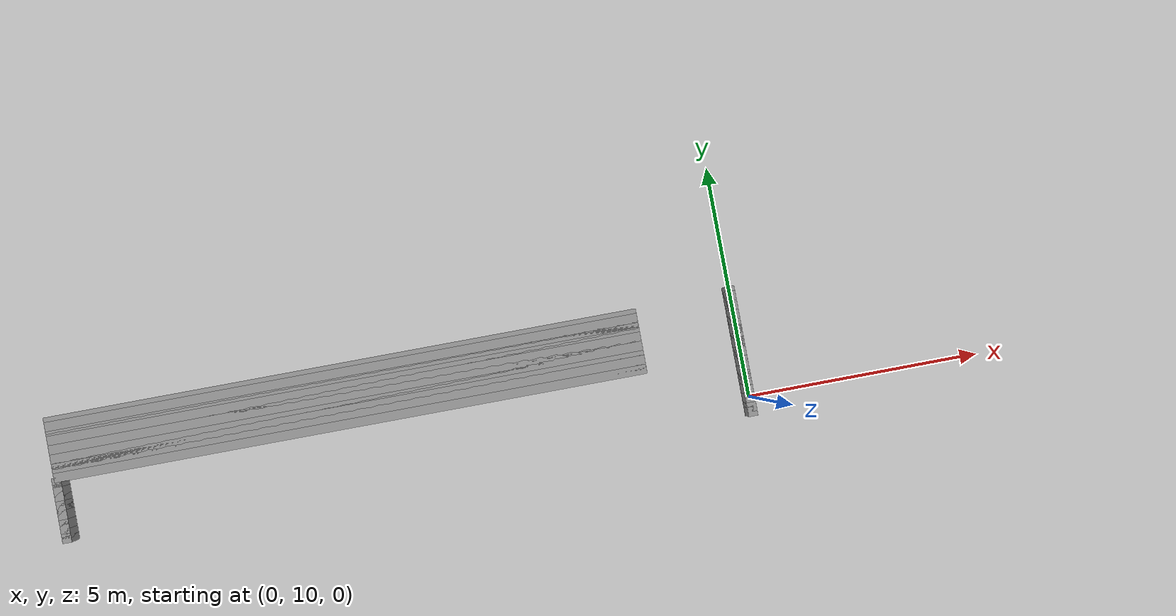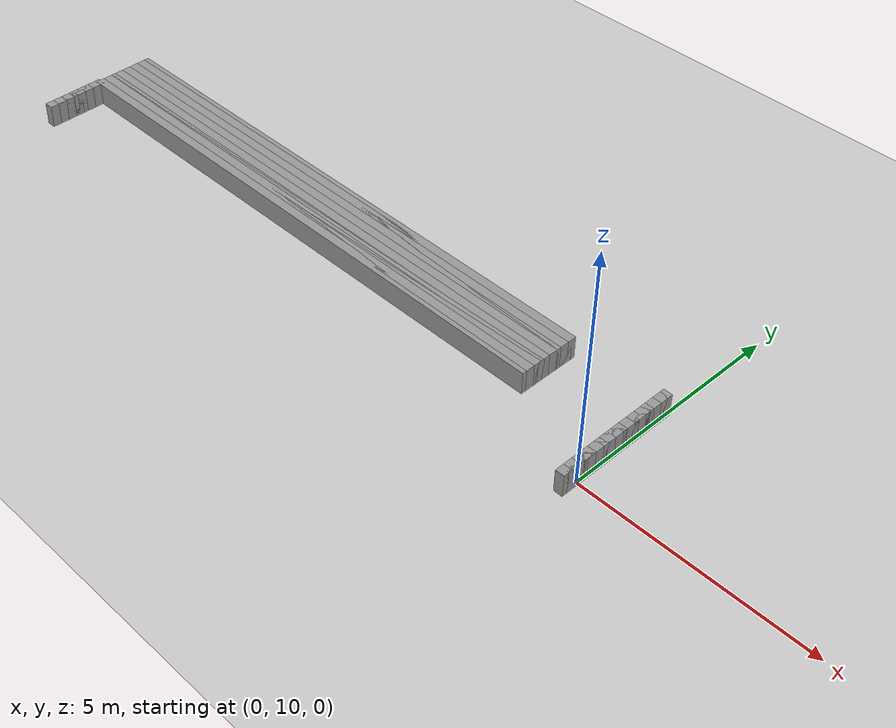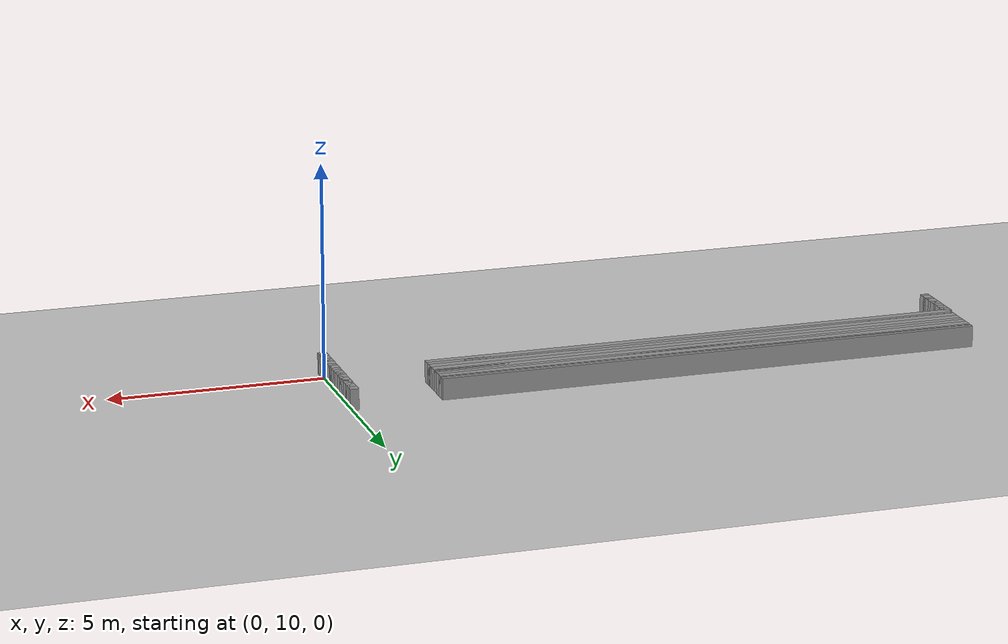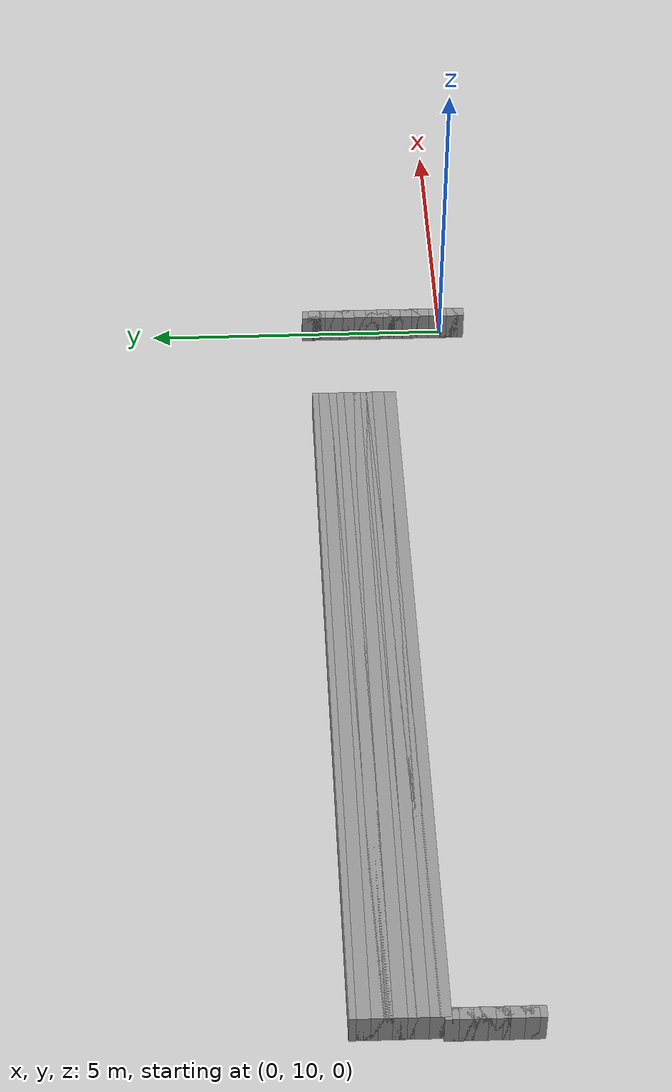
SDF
<sdf version="1.6">
 <world name="GridMap">
  <include><uri>model://sun</uri></include>
  <include><uri>model://ground_plane</uri></include>
  <model name="GridMap">
   <link name="Wall_(0.5,97.0)">
    <collision name="Wall_(0.5,97.0)_Collision">
     <geometry><box><size>0.2 0.2 0.5</size></box></geometry>
     <pose>-0.05 9.700000000000001 0.25 0 -0 0</pose>
    </collision>
    <inertial>
     <mass>0.5</mass>
     <pose>0 0.01 0 0 0 0</pose>
     <inertia><ixx>0.004</ixx><ixy>0.001</ixy><ixz>0</ixz><iyy>0.006</iyy><iyz>0</iyz><izz>0.007</izz></inertia>
    </inertial>
    <visual name="Wall_(0.5,97.0)_Visual">
     <geometry><box><size>0.2 0.2 0.5</size></box></geometry>
     <pose>-0.05 9.700000000000001 0.25 0 -0 0</pose>
     <material>
      <script><uri>file://media/materials/scripts/gazebo.material</uri><name>Gazebo/Grey</name></script>
      <ambient>1 1 1 1</ambient>
     </material>
     <meta><layer>0</layer></meta>
    </visual>
   </link>
   <link name="Wall_(148.5,97.0)">
    <collision name="Wall_(148.5,97.0)_Collision">
     <geometry><box><size>0.2 0.2 0.5</size></box></geometry>
     <pose>-14.850000000000001 9.700000000000001 0.25 0 -0 0</pose>
    </collision>
    <inertial>
     <mass>0.5</mass>
     <pose>0 0.01 0 0 0 0</pose>
     <inertia><ixx>0.004</ixx><ixy>0.001</ixy><ixz>0</ixz><iyy>0.006</iyy><iyz>0</iyz><izz>0.007</izz></inertia>
    </inertial>
    <visual name="Wall_(148.5,97.0)_Visual">
     <geometry><box><size>0.2 0.2 0.5</size></box></geometry>
     <pose>-14.850000000000001 9.700000000000001 0.25 0 -0 0</pose>
     <material>
      <script><uri>file://media/materials/scripts/gazebo.material</uri><name>Gazebo/Grey</name></script>
      <ambient>1 1 1 1</ambient>
     </material>
     <meta><layer>0</layer></meta>
    </visual>
   </link>
   <link name="Wall_(0.5,98.0)">
    <collision name="Wall_(0.5,98.0)_Collision">
     <geometry><box><size>0.2 0.2 0.5</size></box></geometry>
     <pose>-0.05 9.8 0.25 0 -0 0</pose>
    </collision>
    <inertial>
     <mass>0.5</mass>
     <pose>0 0.01 0 0 0 0</pose>
     <inertia><ixx>0.004</ixx><ixy>0.001</ixy><ixz>0</ixz><iyy>0.006</iyy><iyz>0</iyz><izz>0.007</izz></inertia>
    </inertial>
    <visual name="Wall_(0.5,98.0)_Visual">
     <geometry><box><size>0.2 0.2 0.5</size></box></geometry>
     <pose>-0.05 9.8 0.25 0 -0 0</pose>
     <material>
      <script><uri>file://media/materials/scripts/gazebo.material</uri><name>Gazebo/Grey</name></script>
      <ambient>1 1 1 1</ambient>
     </material>
     <meta><layer>0</layer></meta>
    </visual>
   </link>
   <link name="Wall_(148.5,98.0)">
    <collision name="Wall_(148.5,98.0)_Collision">
     <geometry><box><size>0.2 0.2 0.5</size></box></geometry>
     <pose>-14.850000000000001 9.8 0.25 0 -0 0</pose>
    </collision>
    <inertial>
     <mass>0.5</mass>
     <pose>0 0.01 0 0 0 0</pose>
     <inertia><ixx>0.004</ixx><ixy>0.001</ixy><ixz>0</ixz><iyy>0.006</iyy><iyz>0</iyz><izz>0.007</izz></inertia>
    </inertial>
    <visual name="Wall_(148.5,98.0)_Visual">
     <geometry><box><size>0.2 0.2 0.5</size></box></geometry>
     <pose>-14.850000000000001 9.8 0.25 0 -0 0</pose>
     <material>
      <script><uri>file://media/materials/scripts/gazebo.material</uri><name>Gazebo/Grey</name></script>
      <ambient>1 1 1 1</ambient>
     </material>
     <meta><layer>0</layer></meta>
    </visual>
   </link>
   <link name="Wall_(0.5,99.0)">
    <collision name="Wall_(0.5,99.0)_Collision">
     <geometry><box><size>0.2 0.2 0.5</size></box></geometry>
     <pose>-0.05 9.9 0.25 0 -0 0</pose>
    </collision>
    <inertial>
     <mass>0.5</mass>
     <pose>0 0.01 0 0 0 0</pose>
     <inertia><ixx>0.004</ixx><ixy>0.001</ixy><ixz>0</ixz><iyy>0.006</iyy><iyz>0</iyz><izz>0.007</izz></inertia>
    </inertial>
    <visual name="Wall_(0.5,99.0)_Visual">
     <geometry><box><size>0.2 0.2 0.5</size></box></geometry>
     <pose>-0.05 9.9 0.25 0 -0 0</pose>
     <material>
      <script><uri>file://media/materials/scripts/gazebo.material</uri><name>Gazebo/Grey</name></script>
      <ambient>1 1 1 1</ambient>
     </material>
     <meta><layer>0</layer></meta>
    </visual>
   </link>
   <link name="Wall_(148.5,99.0)">
    <collision name="Wall_(148.5,99.0)_Collision">
     <geometry><box><size>0.2 0.2 0.5</size></box></geometry>
     <pose>-14.850000000000001 9.9 0.25 0 -0 0</pose>
    </collision>
    <inertial>
     <mass>0.5</mass>
     <pose>0 0.01 0 0 0 0</pose>
     <inertia><ixx>0.004</ixx><ixy>0.001</ixy><ixz>0</ixz><iyy>0.006</iyy><iyz>0</iyz><izz>0.007</izz></inertia>
    </inertial>
    <visual name="Wall_(148.5,99.0)_Visual">
     <geometry><box><size>0.2 0.2 0.5</size></box></geometry>
     <pose>-14.850000000000001 9.9 0.25 0 -0 0</pose>
     <material>
      <script><uri>file://media/materials/scripts/gazebo.material</uri><name>Gazebo/Grey</name></script>
      <ambient>1 1 1 1</ambient>
     </material>
     <meta><layer>0</layer></meta>
    </visual>
   </link>
   <link name="Wall_(0.5,100.0)">
    <collision name="Wall_(0.5,100.0)_Collision">
     <geometry><box><size>0.2 0.2 0.5</size></box></geometry>
     <pose>-0.05 10.0 0.25 0 -0 0</pose>
    </collision>
    <inertial>
     <mass>0.5</mass>
     <pose>0 0.01 0 0 0 0</pose>
     <inertia><ixx>0.004</ixx><ixy>0.001</ixy><ixz>0</ixz><iyy>0.006</iyy><iyz>0</iyz><izz>0.007</izz></inertia>
    </inertial>
    <visual name="Wall_(0.5,100.0)_Visual">
     <geometry><box><size>0.2 0.2 0.5</size></box></geometry>
     <pose>-0.05 10.0 0.25 0 -0 0</pose>
     <material>
      <script><uri>file://media/materials/scripts/gazebo.material</uri><name>Gazebo/Grey</name></script>
      <ambient>1 1 1 1</ambient>
     </material>
     <meta><layer>0</layer></meta>
    </visual>
   </link>
   <link name="Wall_(148.5,100.0)">
    <collision name="Wall_(148.5,100.0)_Collision">
     <geometry><box><size>0.2 0.2 0.5</size></box></geometry>
     <pose>-14.850000000000001 10.0 0.25 0 -0 0</pose>
    </collision>
    <inertial>
     <mass>0.5</mass>
     <pose>0 0.01 0 0 0 0</pose>
     <inertia><ixx>0.004</ixx><ixy>0.001</ixy><ixz>0</ixz><iyy>0.006</iyy><iyz>0</iyz><izz>0.007</izz></inertia>
    </inertial>
    <visual name="Wall_(148.5,100.0)_Visual">
     <geometry><box><size>0.2 0.2 0.5</size></box></geometry>
     <pose>-14.850000000000001 10.0 0.25 0 -0 0</pose>
     <material>
      <script><uri>file://media/materials/scripts/gazebo.material</uri><name>Gazebo/Grey</name></script>
      <ambient>1 1 1 1</ambient>
     </material>
     <meta><layer>0</layer></meta>
    </visual>
   </link>
   <link name="Wall_(0.5,101.0)">
    <collision name="Wall_(0.5,101.0)_Collision">
     <geometry><box><size>0.2 0.2 0.5</size></box></geometry>
     <pose>-0.05 10.100000000000001 0.25 0 -0 0</pose>
    </collision>
    <inertial>
     <mass>0.5</mass>
     <pose>0 0.01 0 0 0 0</pose>
     <inertia><ixx>0.004</ixx><ixy>0.001</ixy><ixz>0</ixz><iyy>0.006</iyy><iyz>0</iyz><izz>0.007</izz></inertia>
    </inertial>
    <visual name="Wall_(0.5,101.0)_Visual">
     <geometry><box><size>0.2 0.2 0.5</size></box></geometry>
     <pose>-0.05 10.100000000000001 0.25 0 -0 0</pose>
     <material>
      <script><uri>file://media/materials/scripts/gazebo.material</uri><name>Gazebo/Grey</name></script>
      <ambient>1 1 1 1</ambient>
     </material>
     <meta><layer>0</layer></meta>
    </visual>
   </link>
   <link name="Wall_(148.5,101.0)">
    <collision name="Wall_(148.5,101.0)_Collision">
     <geometry><box><size>0.2 0.2 0.5</size></box></geometry>
     <pose>-14.850000000000001 10.100000000000001 0.25 0 -0 0</pose>
    </collision>
    <inertial>
     <mass>0.5</mass>
     <pose>0 0.01 0 0 0 0</pose>
     <inertia><ixx>0.004</ixx><ixy>0.001</ixy><ixz>0</ixz><iyy>0.006</iyy><iyz>0</iyz><izz>0.007</izz></inertia>
    </inertial>
    <visual name="Wall_(148.5,101.0)_Visual">
     <geometry><box><size>0.2 0.2 0.5</size></box></geometry>
     <pose>-14.850000000000001 10.100000000000001 0.25 0 -0 0</pose>
     <material>
      <script><uri>file://media/materials/scripts/gazebo.material</uri><name>Gazebo/Grey</name></script>
      <ambient>1 1 1 1</ambient>
     </material>
     <meta><layer>0</layer></meta>
    </visual>
   </link>
   <link name="Wall_(0.5,102.0)">
    <collision name="Wall_(0.5,102.0)_Collision">
     <geometry><box><size>0.2 0.2 0.5</size></box></geometry>
     <pose>-0.05 10.200000000000001 0.25 0 -0 0</pose>
    </collision>
    <inertial>
     <mass>0.5</mass>
     <pose>0 0.01 0 0 0 0</pose>
     <inertia><ixx>0.004</ixx><ixy>0.001</ixy><ixz>0</ixz><iyy>0.006</iyy><iyz>0</iyz><izz>0.007</izz></inertia>
    </inertial>
    <visual name="Wall_(0.5,102.0)_Visual">
     <geometry><box><size>0.2 0.2 0.5</size></box></geometry>
     <pose>-0.05 10.200000000000001 0.25 0 -0 0</pose>
     <material>
      <script><uri>file://media/materials/scripts/gazebo.material</uri><name>Gazebo/Grey</name></script>
      <ambient>1 1 1 1</ambient>
     </material>
     <meta><layer>0</layer></meta>
    </visual>
   </link>
   <link name="Wall_(148.5,102.0)">
    <collision name="Wall_(148.5,102.0)_Collision">
     <geometry><box><size>0.2 0.2 0.5</size></box></geometry>
     <pose>-14.850000000000001 10.200000000000001 0.25 0 -0 0</pose>
    </collision>
    <inertial>
     <mass>0.5</mass>
     <pose>0 0.01 0 0 0 0</pose>
     <inertia><ixx>0.004</ixx><ixy>0.001</ixy><ixz>0</ixz><iyy>0.006</iyy><iyz>0</iyz><izz>0.007</izz></inertia>
    </inertial>
    <visual name="Wall_(148.5,102.0)_Visual">
     <geometry><box><size>0.2 0.2 0.5</size></box></geometry>
     <pose>-14.850000000000001 10.200000000000001 0.25 0 -0 0</pose>
     <material>
      <script><uri>file://media/materials/scripts/gazebo.material</uri><name>Gazebo/Grey</name></script>
      <ambient>1 1 1 1</ambient>
     </material>
     <meta><layer>0</layer></meta>
    </visual>
   </link>
   <link name="Wall_(0.5,103.0)">
    <collision name="Wall_(0.5,103.0)_Collision">
     <geometry><box><size>0.2 0.2 0.5</size></box></geometry>
     <pose>-0.05 10.3 0.25 0 -0 0</pose>
    </collision>
    <inertial>
     <mass>0.5</mass>
     <pose>0 0.01 0 0 0 0</pose>
     <inertia><ixx>0.004</ixx><ixy>0.001</ixy><ixz>0</ixz><iyy>0.006</iyy><iyz>0</iyz><izz>0.007</izz></inertia>
    </inertial>
    <visual name="Wall_(0.5,103.0)_Visual">
     <geometry><box><size>0.2 0.2 0.5</size></box></geometry>
     <pose>-0.05 10.3 0.25 0 -0 0</pose>
     <material>
      <script><uri>file://media/materials/scripts/gazebo.material</uri><name>Gazebo/Grey</name></script>
      <ambient>1 1 1 1</ambient>
     </material>
     <meta><layer>0</layer></meta>
    </visual>
   </link>
   <link name="Wall_(148.5,103.0)">
    <collision name="Wall_(148.5,103.0)_Collision">
     <geometry><box><size>0.2 0.2 0.5</size></box></geometry>
     <pose>-14.850000000000001 10.3 0.25 0 -0 0</pose>
    </collision>
    <inertial>
     <mass>0.5</mass>
     <pose>0 0.01 0 0 0 0</pose>
     <inertia><ixx>0.004</ixx><ixy>0.001</ixy><ixz>0</ixz><iyy>0.006</iyy><iyz>0</iyz><izz>0.007</izz></inertia>
    </inertial>
    <visual name="Wall_(148.5,103.0)_Visual">
     <geometry><box><size>0.2 0.2 0.5</size></box></geometry>
     <pose>-14.850000000000001 10.3 0.25 0 -0 0</pose>
     <material>
      <script><uri>file://media/materials/scripts/gazebo.material</uri><name>Gazebo/Grey</name></script>
      <ambient>1 1 1 1</ambient>
     </material>
     <meta><layer>0</layer></meta>
    </visual>
   </link>
   <link name="Wall_(0.5,104.0)">
    <collision name="Wall_(0.5,104.0)_Collision">
     <geometry><box><size>0.2 0.2 0.5</size></box></geometry>
     <pose>-0.05 10.4 0.25 0 -0 0</pose>
    </collision>
    <inertial>
     <mass>0.5</mass>
     <pose>0 0.01 0 0 0 0</pose>
     <inertia><ixx>0.004</ixx><ixy>0.001</ixy><ixz>0</ixz><iyy>0.006</iyy><iyz>0</iyz><izz>0.007</izz></inertia>
    </inertial>
    <visual name="Wall_(0.5,104.0)_Visual">
     <geometry><box><size>0.2 0.2 0.5</size></box></geometry>
     <pose>-0.05 10.4 0.25 0 -0 0</pose>
     <material>
      <script><uri>file://media/materials/scripts/gazebo.material</uri><name>Gazebo/Grey</name></script>
      <ambient>1 1 1 1</ambient>
     </material>
     <meta><layer>0</layer></meta>
    </visual>
   </link>
   <link name="Wall_(148.5,104.0)">
    <collision name="Wall_(148.5,104.0)_Collision">
     <geometry><box><size>0.2 0.2 0.5</size></box></geometry>
     <pose>-14.850000000000001 10.4 0.25 0 -0 0</pose>
    </collision>
    <inertial>
     <mass>0.5</mass>
     <pose>0 0.01 0 0 0 0</pose>
     <inertia><ixx>0.004</ixx><ixy>0.001</ixy><ixz>0</ixz><iyy>0.006</iyy><iyz>0</iyz><izz>0.007</izz></inertia>
    </inertial>
    <visual name="Wall_(148.5,104.0)_Visual">
     <geometry><box><size>0.2 0.2 0.5</size></box></geometry>
     <pose>-14.850000000000001 10.4 0.25 0 -0 0</pose>
     <material>
      <script><uri>file://media/materials/scripts/gazebo.material</uri><name>Gazebo/Grey</name></script>
      <ambient>1 1 1 1</ambient>
     </material>
     <meta><layer>0</layer></meta>
    </visual>
   </link>
   <link name="Wall_(0.5,105.0)">
    <collision name="Wall_(0.5,105.0)_Collision">
     <geometry><box><size>0.2 0.2 0.5</size></box></geometry>
     <pose>-0.05 10.5 0.25 0 -0 0</pose>
    </collision>
    <inertial>
     <mass>0.5</mass>
     <pose>0 0.01 0 0 0 0</pose>
     <inertia><ixx>0.004</ixx><ixy>0.001</ixy><ixz>0</ixz><iyy>0.006</iyy><iyz>0</iyz><izz>0.007</izz></inertia>
    </inertial>
    <visual name="Wall_(0.5,105.0)_Visual">
     <geometry><box><size>0.2 0.2 0.5</size></box></geometry>
     <pose>-0.05 10.5 0.25 0 -0 0</pose>
     <material>
      <script><uri>file://media/materials/scripts/gazebo.material</uri><name>Gazebo/Grey</name></script>
      <ambient>1 1 1 1</ambient>
     </material>
     <meta><layer>0</layer></meta>
    </visual>
   </link>
   <link name="Wall_(148.5,105.0)">
    <collision name="Wall_(148.5,105.0)_Collision">
     <geometry><box><size>0.2 0.2 0.5</size></box></geometry>
     <pose>-14.850000000000001 10.5 0.25 0 -0 0</pose>
    </collision>
    <inertial>
     <mass>0.5</mass>
     <pose>0 0.01 0 0 0 0</pose>
     <inertia><ixx>0.004</ixx><ixy>0.001</ixy><ixz>0</ixz><iyy>0.006</iyy><iyz>0</iyz><izz>0.007</izz></inertia>
    </inertial>
    <visual name="Wall_(148.5,105.0)_Visual">
     <geometry><box><size>0.2 0.2 0.5</size></box></geometry>
     <pose>-14.850000000000001 10.5 0.25 0 -0 0</pose>
     <material>
      <script><uri>file://media/materials/scripts/gazebo.material</uri><name>Gazebo/Grey</name></script>
      <ambient>1 1 1 1</ambient>
     </material>
     <meta><layer>0</layer></meta>
    </visual>
   </link>
   <link name="Wall_(0.5,106.0)">
    <collision name="Wall_(0.5,106.0)_Collision">
     <geometry><box><size>0.2 0.2 0.5</size></box></geometry>
     <pose>-0.05 10.600000000000001 0.25 0 -0 0</pose>
    </collision>
    <inertial>
     <mass>0.5</mass>
     <pose>0 0.01 0 0 0 0</pose>
     <inertia><ixx>0.004</ixx><ixy>0.001</ixy><ixz>0</ixz><iyy>0.006</iyy><iyz>0</iyz><izz>0.007</izz></inertia>
    </inertial>
    <visual name="Wall_(0.5,106.0)_Visual">
     <geometry><box><size>0.2 0.2 0.5</size></box></geometry>
     <pose>-0.05 10.600000000000001 0.25 0 -0 0</pose>
     <material>
      <script><uri>file://media/materials/scripts/gazebo.material</uri><name>Gazebo/Grey</name></script>
      <ambient>1 1 1 1</ambient>
     </material>
     <meta><layer>0</layer></meta>
    </visual>
   </link>
   <link name="Wall_(148.5,106.0)">
    <collision name="Wall_(148.5,106.0)_Collision">
     <geometry><box><size>0.2 0.2 0.5</size></box></geometry>
     <pose>-14.850000000000001 10.600000000000001 0.25 0 -0 0</pose>
    </collision>
    <inertial>
     <mass>0.5</mass>
     <pose>0 0.01 0 0 0 0</pose>
     <inertia><ixx>0.004</ixx><ixy>0.001</ixy><ixz>0</ixz><iyy>0.006</iyy><iyz>0</iyz><izz>0.007</izz></inertia>
    </inertial>
    <visual name="Wall_(148.5,106.0)_Visual">
     <geometry><box><size>0.2 0.2 0.5</size></box></geometry>
     <pose>-14.850000000000001 10.600000000000001 0.25 0 -0 0</pose>
     <material>
      <script><uri>file://media/materials/scripts/gazebo.material</uri><name>Gazebo/Grey</name></script>
      <ambient>1 1 1 1</ambient>
     </material>
     <meta><layer>0</layer></meta>
    </visual>
   </link>
   <link name="Wall_(0.5,107.0)">
    <collision name="Wall_(0.5,107.0)_Collision">
     <geometry><box><size>0.2 0.2 0.5</size></box></geometry>
     <pose>-0.05 10.700000000000001 0.25 0 -0 0</pose>
    </collision>
    <inertial>
     <mass>0.5</mass>
     <pose>0 0.01 0 0 0 0</pose>
     <inertia><ixx>0.004</ixx><ixy>0.001</ixy><ixz>0</ixz><iyy>0.006</iyy><iyz>0</iyz><izz>0.007</izz></inertia>
    </inertial>
    <visual name="Wall_(0.5,107.0)_Visual">
     <geometry><box><size>0.2 0.2 0.5</size></box></geometry>
     <pose>-0.05 10.700000000000001 0.25 0 -0 0</pose>
     <material>
      <script><uri>file://media/materials/scripts/gazebo.material</uri><name>Gazebo/Grey</name></script>
      <ambient>1 1 1 1</ambient>
     </material>
     <meta><layer>0</layer></meta>
    </visual>
   </link>
   <link name="Wall_(148.5,107.0)">
    <collision name="Wall_(148.5,107.0)_Collision">
     <geometry><box><size>0.2 0.2 0.5</size></box></geometry>
     <pose>-14.850000000000001 10.700000000000001 0.25 0 -0 0</pose>
    </collision>
    <inertial>
     <mass>0.5</mass>
     <pose>0 0.01 0 0 0 0</pose>
     <inertia><ixx>0.004</ixx><ixy>0.001</ixy><ixz>0</ixz><iyy>0.006</iyy><iyz>0</iyz><izz>0.007</izz></inertia>
    </inertial>
    <visual name="Wall_(148.5,107.0)_Visual">
     <geometry><box><size>0.2 0.2 0.5</size></box></geometry>
     <pose>-14.850000000000001 10.700000000000001 0.25 0 -0 0</pose>
     <material>
      <script><uri>file://media/materials/scripts/gazebo.material</uri><name>Gazebo/Grey</name></script>
      <ambient>1 1 1 1</ambient>
     </material>
     <meta><layer>0</layer></meta>
    </visual>
   </link>
   <link name="Wall_(0.5,108.0)">
    <collision name="Wall_(0.5,108.0)_Collision">
     <geometry><box><size>0.2 0.2 0.5</size></box></geometry>
     <pose>-0.05 10.8 0.25 0 -0 0</pose>
    </collision>
    <inertial>
     <mass>0.5</mass>
     <pose>0 0.01 0 0 0 0</pose>
     <inertia><ixx>0.004</ixx><ixy>0.001</ixy><ixz>0</ixz><iyy>0.006</iyy><iyz>0</iyz><izz>0.007</izz></inertia>
    </inertial>
    <visual name="Wall_(0.5,108.0)_Visual">
     <geometry><box><size>0.2 0.2 0.5</size></box></geometry>
     <pose>-0.05 10.8 0.25 0 -0 0</pose>
     <material>
      <script><uri>file://media/materials/scripts/gazebo.material</uri><name>Gazebo/Grey</name></script>
      <ambient>1 1 1 1</ambient>
     </material>
     <meta><layer>0</layer></meta>
    </visual>
   </link>
   <link name="Wall_(148.5,108.0)">
    <collision name="Wall_(148.5,108.0)_Collision">
     <geometry><box><size>0.2 0.2 0.5</size></box></geometry>
     <pose>-14.850000000000001 10.8 0.25 0 -0 0</pose>
    </collision>
    <inertial>
     <mass>0.5</mass>
     <pose>0 0.01 0 0 0 0</pose>
     <inertia><ixx>0.004</ixx><ixy>0.001</ixy><ixz>0</ixz><iyy>0.006</iyy><iyz>0</iyz><izz>0.007</izz></inertia>
    </inertial>
    <visual name="Wall_(148.5,108.0)_Visual">
     <geometry><box><size>0.2 0.2 0.5</size></box></geometry>
     <pose>-14.850000000000001 10.8 0.25 0 -0 0</pose>
     <material>
      <script><uri>file://media/materials/scripts/gazebo.material</uri><name>Gazebo/Grey</name></script>
      <ambient>1 1 1 1</ambient>
     </material>
     <meta><layer>0</layer></meta>
    </visual>
   </link>
   <link name="Wall_(0.5,109.0)">
    <collision name="Wall_(0.5,109.0)_Collision">
     <geometry><box><size>0.2 0.2 0.5</size></box></geometry>
     <pose>-0.05 10.9 0.25 0 -0 0</pose>
    </collision>
    <inertial>
     <mass>0.5</mass>
     <pose>0 0.01 0 0 0 0</pose>
     <inertia><ixx>0.004</ixx><ixy>0.001</ixy><ixz>0</ixz><iyy>0.006</iyy><iyz>0</iyz><izz>0.007</izz></inertia>
    </inertial>
    <visual name="Wall_(0.5,109.0)_Visual">
     <geometry><box><size>0.2 0.2 0.5</size></box></geometry>
     <pose>-0.05 10.9 0.25 0 -0 0</pose>
     <material>
      <script><uri>file://media/materials/scripts/gazebo.material</uri><name>Gazebo/Grey</name></script>
      <ambient>1 1 1 1</ambient>
     </material>
     <meta><layer>0</layer></meta>
    </visual>
   </link>
   <link name="Wall_(148.5,109.0)">
    <collision name="Wall_(148.5,109.0)_Collision">
     <geometry><box><size>0.2 0.2 0.5</size></box></geometry>
     <pose>-14.850000000000001 10.9 0.25 0 -0 0</pose>
    </collision>
    <inertial>
     <mass>0.5</mass>
     <pose>0 0.01 0 0 0 0</pose>
     <inertia><ixx>0.004</ixx><ixy>0.001</ixy><ixz>0</ixz><iyy>0.006</iyy><iyz>0</iyz><izz>0.007</izz></inertia>
    </inertial>
    <visual name="Wall_(148.5,109.0)_Visual">
     <geometry><box><size>0.2 0.2 0.5</size></box></geometry>
     <pose>-14.850000000000001 10.9 0.25 0 -0 0</pose>
     <material>
      <script><uri>file://media/materials/scripts/gazebo.material</uri><name>Gazebo/Grey</name></script>
      <ambient>1 1 1 1</ambient>
     </material>
     <meta><layer>0</layer></meta>
    </visual>
   </link>
   <link name="Wall_(0.5,110.0)">
    <collision name="Wall_(0.5,110.0)_Collision">
     <geometry><box><size>0.2 0.2 0.5</size></box></geometry>
     <pose>-0.05 11.0 0.25 0 -0 0</pose>
    </collision>
    <inertial>
     <mass>0.5</mass>
     <pose>0 0.01 0 0 0 0</pose>
     <inertia><ixx>0.004</ixx><ixy>0.001</ixy><ixz>0</ixz><iyy>0.006</iyy><iyz>0</iyz><izz>0.007</izz></inertia>
    </inertial>
    <visual name="Wall_(0.5,110.0)_Visual">
     <geometry><box><size>0.2 0.2 0.5</size></box></geometry>
     <pose>-0.05 11.0 0.25 0 -0 0</pose>
     <material>
      <script><uri>file://media/materials/scripts/gazebo.material</uri><name>Gazebo/Grey</name></script>
      <ambient>1 1 1 1</ambient>
     </material>
     <meta><layer>0</layer></meta>
    </visual>
   </link>
   <link name="Wall_(85.0,110.0)">
    <collision name="Wall_(85.0,110.0)_Collision">
     <geometry><box><size>12.8 0.2 0.5</size></box></geometry>
     <pose>-8.5 11.0 0.25 0 -0 0</pose>
    </collision>
    <inertial>
     <mass>0.5</mass>
     <pose>0 0.01 0 0 0 0</pose>
     <inertia><ixx>0.004</ixx><ixy>0.001</ixy><ixz>0</ixz><iyy>0.006</iyy><iyz>0</iyz><izz>0.007</izz></inertia>
    </inertial>
    <visual name="Wall_(85.0,110.0)_Visual">
     <geometry><box><size>12.8 0.2 0.5</size></box></geometry>
     <pose>-8.5 11.0 0.25 0 -0 0</pose>
     <material>
      <script><uri>file://media/materials/scripts/gazebo.material</uri><name>Gazebo/Grey</name></script>
      <ambient>1 1 1 1</ambient>
     </material>
     <meta><layer>0</layer></meta>
    </visual>
   </link>
   <link name="Wall_(0.5,111.0)">
    <collision name="Wall_(0.5,111.0)_Collision">
     <geometry><box><size>0.2 0.2 0.5</size></box></geometry>
     <pose>-0.05 11.100000000000001 0.25 0 -0 0</pose>
    </collision>
    <inertial>
     <mass>0.5</mass>
     <pose>0 0.01 0 0 0 0</pose>
     <inertia><ixx>0.004</ixx><ixy>0.001</ixy><ixz>0</ixz><iyy>0.006</iyy><iyz>0</iyz><izz>0.007</izz></inertia>
    </inertial>
    <visual name="Wall_(0.5,111.0)_Visual">
     <geometry><box><size>0.2 0.2 0.5</size></box></geometry>
     <pose>-0.05 11.100000000000001 0.25 0 -0 0</pose>
     <material>
      <script><uri>file://media/materials/scripts/gazebo.material</uri><name>Gazebo/Grey</name></script>
      <ambient>1 1 1 1</ambient>
     </material>
     <meta><layer>0</layer></meta>
    </visual>
   </link>
   <link name="Wall_(85.0,111.0)">
    <collision name="Wall_(85.0,111.0)_Collision">
     <geometry><box><size>12.8 0.2 0.5</size></box></geometry>
     <pose>-8.5 11.100000000000001 0.25 0 -0 0</pose>
    </collision>
    <inertial>
     <mass>0.5</mass>
     <pose>0 0.01 0 0 0 0</pose>
     <inertia><ixx>0.004</ixx><ixy>0.001</ixy><ixz>0</ixz><iyy>0.006</iyy><iyz>0</iyz><izz>0.007</izz></inertia>
    </inertial>
    <visual name="Wall_(85.0,111.0)_Visual">
     <geometry><box><size>12.8 0.2 0.5</size></box></geometry>
     <pose>-8.5 11.100000000000001 0.25 0 -0 0</pose>
     <material>
      <script><uri>file://media/materials/scripts/gazebo.material</uri><name>Gazebo/Grey</name></script>
      <ambient>1 1 1 1</ambient>
     </material>
     <meta><layer>0</layer></meta>
    </visual>
   </link>
   <link name="Wall_(0.5,112.0)">
    <collision name="Wall_(0.5,112.0)_Collision">
     <geometry><box><size>0.2 0.2 0.5</size></box></geometry>
     <pose>-0.05 11.200000000000001 0.25 0 -0 0</pose>
    </collision>
    <inertial>
     <mass>0.5</mass>
     <pose>0 0.01 0 0 0 0</pose>
     <inertia><ixx>0.004</ixx><ixy>0.001</ixy><ixz>0</ixz><iyy>0.006</iyy><iyz>0</iyz><izz>0.007</izz></inertia>
    </inertial>
    <visual name="Wall_(0.5,112.0)_Visual">
     <geometry><box><size>0.2 0.2 0.5</size></box></geometry>
     <pose>-0.05 11.200000000000001 0.25 0 -0 0</pose>
     <material>
      <script><uri>file://media/materials/scripts/gazebo.material</uri><name>Gazebo/Grey</name></script>
      <ambient>1 1 1 1</ambient>
     </material>
     <meta><layer>0</layer></meta>
    </visual>
   </link>
   <link name="Wall_(85.0,112.0)">
    <collision name="Wall_(85.0,112.0)_Collision">
     <geometry><box><size>12.8 0.2 0.5</size></box></geometry>
     <pose>-8.5 11.200000000000001 0.25 0 -0 0</pose>
    </collision>
    <inertial>
     <mass>0.5</mass>
     <pose>0 0.01 0 0 0 0</pose>
     <inertia><ixx>0.004</ixx><ixy>0.001</ixy><ixz>0</ixz><iyy>0.006</iyy><iyz>0</iyz><izz>0.007</izz></inertia>
    </inertial>
    <visual name="Wall_(85.0,112.0)_Visual">
     <geometry><box><size>12.8 0.2 0.5</size></box></geometry>
     <pose>-8.5 11.200000000000001 0.25 0 -0 0</pose>
     <material>
      <script><uri>file://media/materials/scripts/gazebo.material</uri><name>Gazebo/Grey</name></script>
      <ambient>1 1 1 1</ambient>
     </material>
     <meta><layer>0</layer></meta>
    </visual>
   </link>
   <link name="Wall_(0.5,113.0)">
    <collision name="Wall_(0.5,113.0)_Collision">
     <geometry><box><size>0.2 0.2 0.5</size></box></geometry>
     <pose>-0.05 11.3 0.25 0 -0 0</pose>
    </collision>
    <inertial>
     <mass>0.5</mass>
     <pose>0 0.01 0 0 0 0</pose>
     <inertia><ixx>0.004</ixx><ixy>0.001</ixy><ixz>0</ixz><iyy>0.006</iyy><iyz>0</iyz><izz>0.007</izz></inertia>
    </inertial>
    <visual name="Wall_(0.5,113.0)_Visual">
     <geometry><box><size>0.2 0.2 0.5</size></box></geometry>
     <pose>-0.05 11.3 0.25 0 -0 0</pose>
     <material>
      <script><uri>file://media/materials/scripts/gazebo.material</uri><name>Gazebo/Grey</name></script>
      <ambient>1 1 1 1</ambient>
     </material>
     <meta><layer>0</layer></meta>
    </visual>
   </link>
   <link name="Wall_(85.0,113.0)">
    <collision name="Wall_(85.0,113.0)_Collision">
     <geometry><box><size>12.8 0.2 0.5</size></box></geometry>
     <pose>-8.5 11.3 0.25 0 -0 0</pose>
    </collision>
    <inertial>
     <mass>0.5</mass>
     <pose>0 0.01 0 0 0 0</pose>
     <inertia><ixx>0.004</ixx><ixy>0.001</ixy><ixz>0</ixz><iyy>0.006</iyy><iyz>0</iyz><izz>0.007</izz></inertia>
    </inertial>
    <visual name="Wall_(85.0,113.0)_Visual">
     <geometry><box><size>12.8 0.2 0.5</size></box></geometry>
     <pose>-8.5 11.3 0.25 0 -0 0</pose>
     <material>
      <script><uri>file://media/materials/scripts/gazebo.material</uri><name>Gazebo/Grey</name></script>
      <ambient>1 1 1 1</ambient>
     </material>
     <meta><layer>0</layer></meta>
    </visual>
   </link>
   <link name="Wall_(0.5,114.0)">
    <collision name="Wall_(0.5,114.0)_Collision">
     <geometry><box><size>0.2 0.2 0.5</size></box></geometry>
     <pose>-0.05 11.4 0.25 0 -0 0</pose>
    </collision>
    <inertial>
     <mass>0.5</mass>
     <pose>0 0.01 0 0 0 0</pose>
     <inertia><ixx>0.004</ixx><ixy>0.001</ixy><ixz>0</ixz><iyy>0.006</iyy><iyz>0</iyz><izz>0.007</izz></inertia>
    </inertial>
    <visual name="Wall_(0.5,114.0)_Visual">
     <geometry><box><size>0.2 0.2 0.5</size></box></geometry>
     <pose>-0.05 11.4 0.25 0 -0 0</pose>
     <material>
      <script><uri>file://media/materials/scripts/gazebo.material</uri><name>Gazebo/Grey</name></script>
      <ambient>1 1 1 1</ambient>
     </material>
     <meta><layer>0</layer></meta>
    </visual>
   </link>
   <link name="Wall_(85.0,114.0)">
    <collision name="Wall_(85.0,114.0)_Collision">
     <geometry><box><size>12.8 0.2 0.5</size></box></geometry>
     <pose>-8.5 11.4 0.25 0 -0 0</pose>
    </collision>
    <inertial>
     <mass>0.5</mass>
     <pose>0 0.01 0 0 0 0</pose>
     <inertia><ixx>0.004</ixx><ixy>0.001</ixy><ixz>0</ixz><iyy>0.006</iyy><iyz>0</iyz><izz>0.007</izz></inertia>
    </inertial>
    <visual name="Wall_(85.0,114.0)_Visual">
     <geometry><box><size>12.8 0.2 0.5</size></box></geometry>
     <pose>-8.5 11.4 0.25 0 -0 0</pose>
     <material>
      <script><uri>file://media/materials/scripts/gazebo.material</uri><name>Gazebo/Grey</name></script>
      <ambient>1 1 1 1</ambient>
     </material>
     <meta><layer>0</layer></meta>
    </visual>
   </link>
   <link name="Wall_(0.5,115.0)">
    <collision name="Wall_(0.5,115.0)_Collision">
     <geometry><box><size>0.2 0.2 0.5</size></box></geometry>
     <pose>-0.05 11.5 0.25 0 -0 0</pose>
    </collision>
    <inertial>
     <mass>0.5</mass>
     <pose>0 0.01 0 0 0 0</pose>
     <inertia><ixx>0.004</ixx><ixy>0.001</ixy><ixz>0</ixz><iyy>0.006</iyy><iyz>0</iyz><izz>0.007</izz></inertia>
    </inertial>
    <visual name="Wall_(0.5,115.0)_Visual">
     <geometry><box><size>0.2 0.2 0.5</size></box></geometry>
     <pose>-0.05 11.5 0.25 0 -0 0</pose>
     <material>
      <script><uri>file://media/materials/scripts/gazebo.material</uri><name>Gazebo/Grey</name></script>
      <ambient>1 1 1 1</ambient>
     </material>
     <meta><layer>0</layer></meta>
    </visual>
   </link>
   <link name="Wall_(85.0,115.0)">
    <collision name="Wall_(85.0,115.0)_Collision">
     <geometry><box><size>12.8 0.2 0.5</size></box></geometry>
     <pose>-8.5 11.5 0.25 0 -0 0</pose>
    </collision>
    <inertial>
     <mass>0.5</mass>
     <pose>0 0.01 0 0 0 0</pose>
     <inertia><ixx>0.004</ixx><ixy>0.001</ixy><ixz>0</ixz><iyy>0.006</iyy><iyz>0</iyz><izz>0.007</izz></inertia>
    </inertial>
    <visual name="Wall_(85.0,115.0)_Visual">
     <geometry><box><size>12.8 0.2 0.5</size></box></geometry>
     <pose>-8.5 11.5 0.25 0 -0 0</pose>
     <material>
      <script><uri>file://media/materials/scripts/gazebo.material</uri><name>Gazebo/Grey</name></script>
      <ambient>1 1 1 1</ambient>
     </material>
     <meta><layer>0</layer></meta>
    </visual>
   </link>
   <link name="Wall_(0.5,116.0)">
    <collision name="Wall_(0.5,116.0)_Collision">
     <geometry><box><size>0.2 0.2 0.5</size></box></geometry>
     <pose>-0.05 11.600000000000001 0.25 0 -0 0</pose>
    </collision>
    <inertial>
     <mass>0.5</mass>
     <pose>0 0.01 0 0 0 0</pose>
     <inertia><ixx>0.004</ixx><ixy>0.001</ixy><ixz>0</ixz><iyy>0.006</iyy><iyz>0</iyz><izz>0.007</izz></inertia>
    </inertial>
    <visual name="Wall_(0.5,116.0)_Visual">
     <geometry><box><size>0.2 0.2 0.5</size></box></geometry>
     <pose>-0.05 11.600000000000001 0.25 0 -0 0</pose>
     <material>
      <script><uri>file://media/materials/scripts/gazebo.material</uri><name>Gazebo/Grey</name></script>
      <ambient>1 1 1 1</ambient>
     </material>
     <meta><layer>0</layer></meta>
    </visual>
   </link>
   <link name="Wall_(85.0,116.0)">
    <collision name="Wall_(85.0,116.0)_Collision">
     <geometry><box><size>12.8 0.2 0.5</size></box></geometry>
     <pose>-8.5 11.600000000000001 0.25 0 -0 0</pose>
    </collision>
    <inertial>
     <mass>0.5</mass>
     <pose>0 0.01 0 0 0 0</pose>
     <inertia><ixx>0.004</ixx><ixy>0.001</ixy><ixz>0</ixz><iyy>0.006</iyy><iyz>0</iyz><izz>0.007</izz></inertia>
    </inertial>
    <visual name="Wall_(85.0,116.0)_Visual">
     <geometry><box><size>12.8 0.2 0.5</size></box></geometry>
     <pose>-8.5 11.600000000000001 0.25 0 -0 0</pose>
     <material>
      <script><uri>file://media/materials/scripts/gazebo.material</uri><name>Gazebo/Grey</name></script>
      <ambient>1 1 1 1</ambient>
     </material>
     <meta><layer>0</layer></meta>
    </visual>
   </link>
   <link name="Wall_(0.5,117.0)">
    <collision name="Wall_(0.5,117.0)_Collision">
     <geometry><box><size>0.2 0.2 0.5</size></box></geometry>
     <pose>-0.05 11.700000000000001 0.25 0 -0 0</pose>
    </collision>
    <inertial>
     <mass>0.5</mass>
     <pose>0 0.01 0 0 0 0</pose>
     <inertia><ixx>0.004</ixx><ixy>0.001</ixy><ixz>0</ixz><iyy>0.006</iyy><iyz>0</iyz><izz>0.007</izz></inertia>
    </inertial>
    <visual name="Wall_(0.5,117.0)_Visual">
     <geometry><box><size>0.2 0.2 0.5</size></box></geometry>
     <pose>-0.05 11.700000000000001 0.25 0 -0 0</pose>
     <material>
      <script><uri>file://media/materials/scripts/gazebo.material</uri><name>Gazebo/Grey</name></script>
      <ambient>1 1 1 1</ambient>
     </material>
     <meta><layer>0</layer></meta>
    </visual>
   </link>
   <link name="Wall_(85.0,117.0)">
    <collision name="Wall_(85.0,117.0)_Collision">
     <geometry><box><size>12.8 0.2 0.5</size></box></geometry>
     <pose>-8.5 11.700000000000001 0.25 0 -0 0</pose>
    </collision>
    <inertial>
     <mass>0.5</mass>
     <pose>0 0.01 0 0 0 0</pose>
     <inertia><ixx>0.004</ixx><ixy>0.001</ixy><ixz>0</ixz><iyy>0.006</iyy><iyz>0</iyz><izz>0.007</izz></inertia>
    </inertial>
    <visual name="Wall_(85.0,117.0)_Visual">
     <geometry><box><size>12.8 0.2 0.5</size></box></geometry>
     <pose>-8.5 11.700000000000001 0.25 0 -0 0</pose>
     <material>
      <script><uri>file://media/materials/scripts/gazebo.material</uri><name>Gazebo/Grey</name></script>
      <ambient>1 1 1 1</ambient>
     </material>
     <meta><layer>0</layer></meta>
    </visual>
   </link>
   <link name="Wall_(0.5,118.0)">
    <collision name="Wall_(0.5,118.0)_Collision">
     <geometry><box><size>0.2 0.2 0.5</size></box></geometry>
     <pose>-0.05 11.8 0.25 0 -0 0</pose>
    </collision>
    <inertial>
     <mass>0.5</mass>
     <pose>0 0.01 0 0 0 0</pose>
     <inertia><ixx>0.004</ixx><ixy>0.001</ixy><ixz>0</ixz><iyy>0.006</iyy><iyz>0</iyz><izz>0.007</izz></inertia>
    </inertial>
    <visual name="Wall_(0.5,118.0)_Visual">
     <geometry><box><size>0.2 0.2 0.5</size></box></geometry>
     <pose>-0.05 11.8 0.25 0 -0 0</pose>
     <material>
      <script><uri>file://media/materials/scripts/gazebo.material</uri><name>Gazebo/Grey</name></script>
      <ambient>1 1 1 1</ambient>
     </material>
     <meta><layer>0</layer></meta>
    </visual>
   </link>
   <link name="Wall_(85.0,118.0)">
    <collision name="Wall_(85.0,118.0)_Collision">
     <geometry><box><size>12.8 0.2 0.5</size></box></geometry>
     <pose>-8.5 11.8 0.25 0 -0 0</pose>
    </collision>
    <inertial>
     <mass>0.5</mass>
     <pose>0 0.01 0 0 0 0</pose>
     <inertia><ixx>0.004</ixx><ixy>0.001</ixy><ixz>0</ixz><iyy>0.006</iyy><iyz>0</iyz><izz>0.007</izz></inertia>
    </inertial>
    <visual name="Wall_(85.0,118.0)_Visual">
     <geometry><box><size>12.8 0.2 0.5</size></box></geometry>
     <pose>-8.5 11.8 0.25 0 -0 0</pose>
     <material>
      <script><uri>file://media/materials/scripts/gazebo.material</uri><name>Gazebo/Grey</name></script>
      <ambient>1 1 1 1</ambient>
     </material>
     <meta><layer>0</layer></meta>
    </visual>
   </link>
   <link name="Wall_(0.5,119.0)">
    <collision name="Wall_(0.5,119.0)_Collision">
     <geometry><box><size>0.2 0.2 0.5</size></box></geometry>
     <pose>-0.05 11.9 0.25 0 -0 0</pose>
    </collision>
    <inertial>
     <mass>0.5</mass>
     <pose>0 0.01 0 0 0 0</pose>
     <inertia><ixx>0.004</ixx><ixy>0.001</ixy><ixz>0</ixz><iyy>0.006</iyy><iyz>0</iyz><izz>0.007</izz></inertia>
    </inertial>
    <visual name="Wall_(0.5,119.0)_Visual">
     <geometry><box><size>0.2 0.2 0.5</size></box></geometry>
     <pose>-0.05 11.9 0.25 0 -0 0</pose>
     <material>
      <script><uri>file://media/materials/scripts/gazebo.material</uri><name>Gazebo/Grey</name></script>
      <ambient>1 1 1 1</ambient>
     </material>
     <meta><layer>0</layer></meta>
    </visual>
   </link>
   <link name="Wall_(85.0,119.0)">
    <collision name="Wall_(85.0,119.0)_Collision">
     <geometry><box><size>12.8 0.2 0.5</size></box></geometry>
     <pose>-8.5 11.9 0.25 0 -0 0</pose>
    </collision>
    <inertial>
     <mass>0.5</mass>
     <pose>0 0.01 0 0 0 0</pose>
     <inertia><ixx>0.004</ixx><ixy>0.001</ixy><ixz>0</ixz><iyy>0.006</iyy><iyz>0</iyz><izz>0.007</izz></inertia>
    </inertial>
    <visual name="Wall_(85.0,119.0)_Visual">
     <geometry><box><size>12.8 0.2 0.5</size></box></geometry>
     <pose>-8.5 11.9 0.25 0 -0 0</pose>
     <material>
      <script><uri>file://media/materials/scripts/gazebo.material</uri><name>Gazebo/Grey</name></script>
      <ambient>1 1 1 1</ambient>
     </material>
     <meta><layer>0</layer></meta>
    </visual>
   </link>
   <link name="Wall_(0.5,120.0)">
    <collision name="Wall_(0.5,120.0)_Collision">
     <geometry><box><size>0.2 0.2 0.5</size></box></geometry>
     <pose>-0.05 12.0 0.25 0 -0 0</pose>
    </collision>
    <inertial>
     <mass>0.5</mass>
     <pose>0 0.01 0 0 0 0</pose>
     <inertia><ixx>0.004</ixx><ixy>0.001</ixy><ixz>0</ixz><iyy>0.006</iyy><iyz>0</iyz><izz>0.007</izz></inertia>
    </inertial>
    <visual name="Wall_(0.5,120.0)_Visual">
     <geometry><box><size>0.2 0.2 0.5</size></box></geometry>
     <pose>-0.05 12.0 0.25 0 -0 0</pose>
     <material>
      <script><uri>file://media/materials/scripts/gazebo.material</uri><name>Gazebo/Grey</name></script>
      <ambient>1 1 1 1</ambient>
     </material>
     <meta><layer>0</layer></meta>
    </visual>
   </link>
   <link name="Wall_(85.0,120.0)">
    <collision name="Wall_(85.0,120.0)_Collision">
     <geometry><box><size>12.8 0.2 0.5</size></box></geometry>
     <pose>-8.5 12.0 0.25 0 -0 0</pose>
    </collision>
    <inertial>
     <mass>0.5</mass>
     <pose>0 0.01 0 0 0 0</pose>
     <inertia><ixx>0.004</ixx><ixy>0.001</ixy><ixz>0</ixz><iyy>0.006</iyy><iyz>0</iyz><izz>0.007</izz></inertia>
    </inertial>
    <visual name="Wall_(85.0,120.0)_Visual">
     <geometry><box><size>12.8 0.2 0.5</size></box></geometry>
     <pose>-8.5 12.0 0.25 0 -0 0</pose>
     <material>
      <script><uri>file://media/materials/scripts/gazebo.material</uri><name>Gazebo/Grey</name></script>
      <ambient>1 1 1 1</ambient>
     </material>
     <meta><layer>0</layer></meta>
    </visual>
   </link>
   <link name="Wall_(0.5,121.0)">
    <collision name="Wall_(0.5,121.0)_Collision">
     <geometry><box><size>0.2 0.2 0.5</size></box></geometry>
     <pose>-0.05 12.100000000000001 0.25 0 -0 0</pose>
    </collision>
    <inertial>
     <mass>0.5</mass>
     <pose>0 0.01 0 0 0 0</pose>
     <inertia><ixx>0.004</ixx><ixy>0.001</ixy><ixz>0</ixz><iyy>0.006</iyy><iyz>0</iyz><izz>0.007</izz></inertia>
    </inertial>
    <visual name="Wall_(0.5,121.0)_Visual">
     <geometry><box><size>0.2 0.2 0.5</size></box></geometry>
     <pose>-0.05 12.100000000000001 0.25 0 -0 0</pose>
     <material>
      <script><uri>file://media/materials/scripts/gazebo.material</uri><name>Gazebo/Grey</name></script>
      <ambient>1 1 1 1</ambient>
     </material>
     <meta><layer>0</layer></meta>
    </visual>
   </link>
   <link name="Wall_(85.0,121.0)">
    <collision name="Wall_(85.0,121.0)_Collision">
     <geometry><box><size>12.8 0.2 0.5</size></box></geometry>
     <pose>-8.5 12.100000000000001 0.25 0 -0 0</pose>
    </collision>
    <inertial>
     <mass>0.5</mass>
     <pose>0 0.01 0 0 0 0</pose>
     <inertia><ixx>0.004</ixx><ixy>0.001</ixy><ixz>0</ixz><iyy>0.006</iyy><iyz>0</iyz><izz>0.007</izz></inertia>
    </inertial>
    <visual name="Wall_(85.0,121.0)_Visual">
     <geometry><box><size>12.8 0.2 0.5</size></box></geometry>
     <pose>-8.5 12.100000000000001 0.25 0 -0 0</pose>
     <material>
      <script><uri>file://media/materials/scripts/gazebo.material</uri><name>Gazebo/Grey</name></script>
      <ambient>1 1 1 1</ambient>
     </material>
     <meta><layer>0</layer></meta>
    </visual>
   </link>
   <link name="Wall_(0.5,122.0)">
    <collision name="Wall_(0.5,122.0)_Collision">
     <geometry><box><size>0.2 0.2 0.5</size></box></geometry>
     <pose>-0.05 12.200000000000001 0.25 0 -0 0</pose>
    </collision>
    <inertial>
     <mass>0.5</mass>
     <pose>0 0.01 0 0 0 0</pose>
     <inertia><ixx>0.004</ixx><ixy>0.001</ixy><ixz>0</ixz><iyy>0.006</iyy><iyz>0</iyz><izz>0.007</izz></inertia>
    </inertial>
    <visual name="Wall_(0.5,122.0)_Visual">
     <geometry><box><size>0.2 0.2 0.5</size></box></geometry>
     <pose>-0.05 12.200000000000001 0.25 0 -0 0</pose>
     <material>
      <script><uri>file://media/materials/scripts/gazebo.material</uri><name>Gazebo/Grey</name></script>
      <ambient>1 1 1 1</ambient>
     </material>
     <meta><layer>0</layer></meta>
    </visual>
   </link>
   <link name="Wall_(85.0,122.0)">
    <collision name="Wall_(85.0,122.0)_Collision">
     <geometry><box><size>12.8 0.2 0.5</size></box></geometry>
     <pose>-8.5 12.200000000000001 0.25 0 -0 0</pose>
    </collision>
    <inertial>
     <mass>0.5</mass>
     <pose>0 0.01 0 0 0 0</pose>
     <inertia><ixx>0.004</ixx><ixy>0.001</ixy><ixz>0</ixz><iyy>0.006</iyy><iyz>0</iyz><izz>0.007</izz></inertia>
    </inertial>
    <visual name="Wall_(85.0,122.0)_Visual">
     <geometry><box><size>12.8 0.2 0.5</size></box></geometry>
     <pose>-8.5 12.200000000000001 0.25 0 -0 0</pose>
     <material>
      <script><uri>file://media/materials/scripts/gazebo.material</uri><name>Gazebo/Grey</name></script>
      <ambient>1 1 1 1</ambient>
     </material>
     <meta><layer>0</layer></meta>
    </visual>
   </link>
   <link name="Wall_(0.5,123.0)">
    <collision name="Wall_(0.5,123.0)_Collision">
     <geometry><box><size>0.2 0.2 0.5</size></box></geometry>
     <pose>-0.05 12.3 0.25 0 -0 0</pose>
    </collision>
    <inertial>
     <mass>0.5</mass>
     <pose>0 0.01 0 0 0 0</pose>
     <inertia><ixx>0.004</ixx><ixy>0.001</ixy><ixz>0</ixz><iyy>0.006</iyy><iyz>0</iyz><izz>0.007</izz></inertia>
    </inertial>
    <visual name="Wall_(0.5,123.0)_Visual">
     <geometry><box><size>0.2 0.2 0.5</size></box></geometry>
     <pose>-0.05 12.3 0.25 0 -0 0</pose>
     <material>
      <script><uri>file://media/materials/scripts/gazebo.material</uri><name>Gazebo/Grey</name></script>
      <ambient>1 1 1 1</ambient>
     </material>
     <meta><layer>0</layer></meta>
    </visual>
   </link>
   <static>1</static>
  </model>
 </world>
</sdf>
